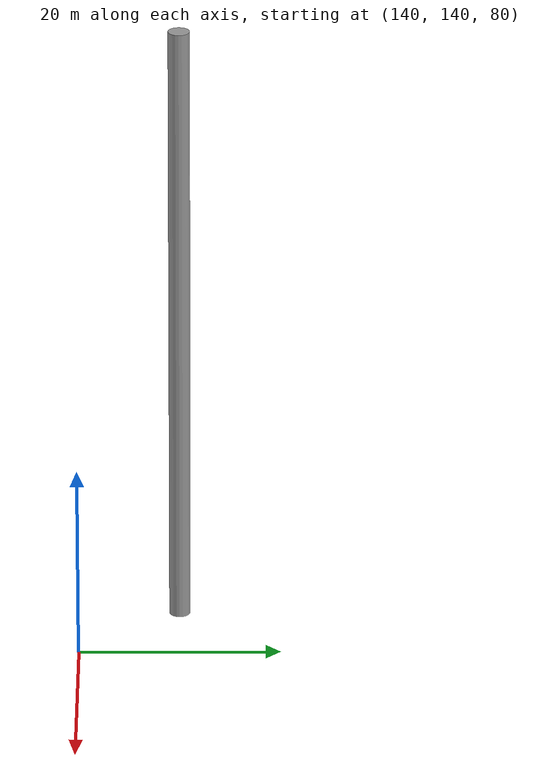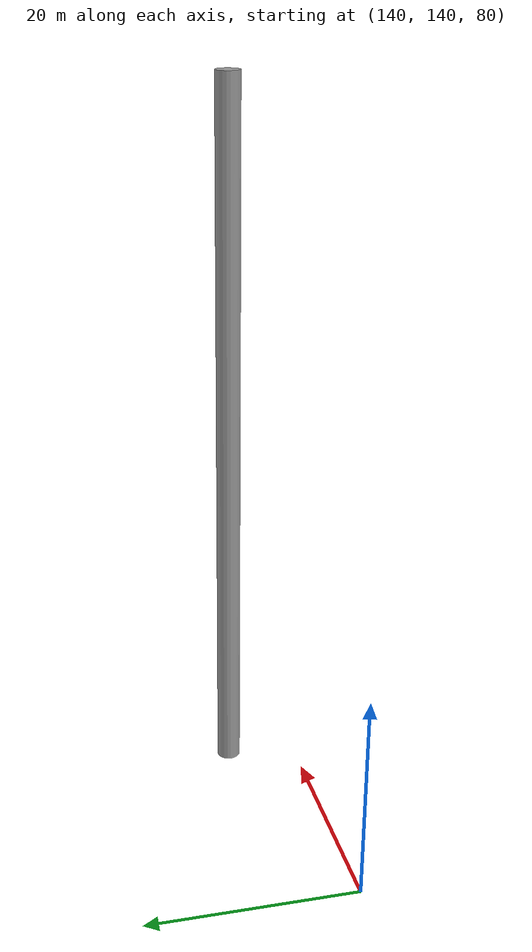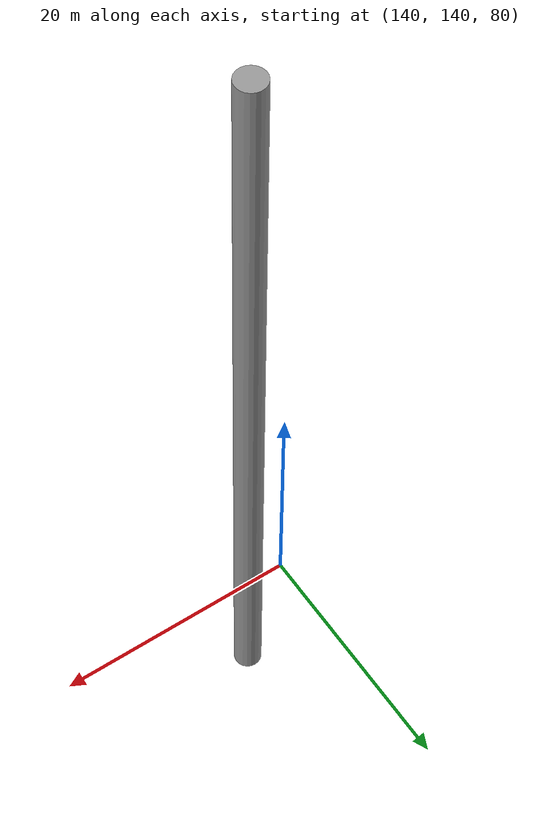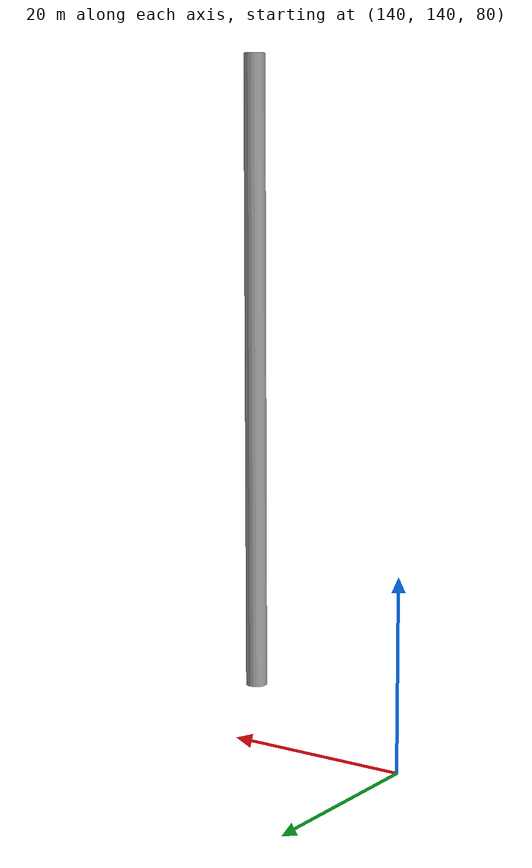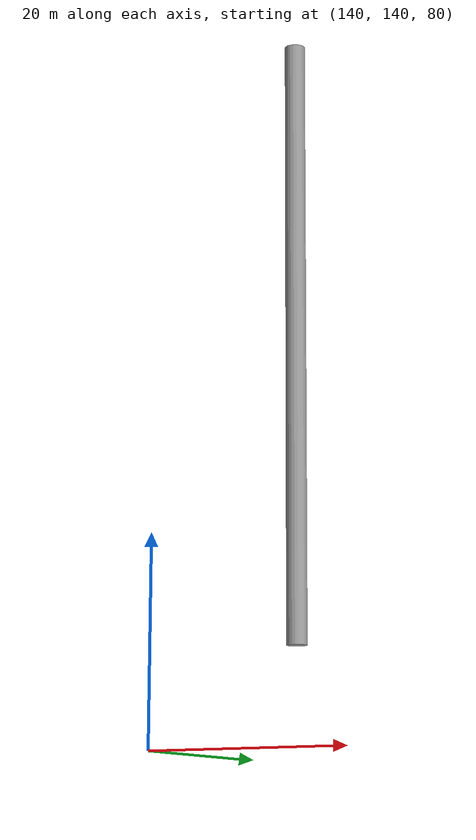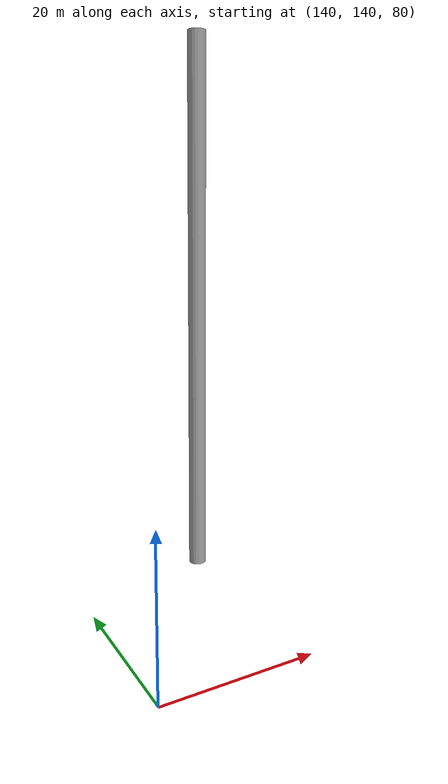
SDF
<?xml version='1.0'?>
<sdf version='1.7'><model name='stick_left'>
  <pose>150 150 150 0 0 0</pose>
  <link name="link">
      <gravity>0</gravity>
      <collision name="collision">
        <geometry>
          <mesh>
            <uri>model://stick_left/meshes/tinker.obj</uri>
          </mesh>
        </geometry>
      </collision>
      <visual name="visual">
        <geometry>
          <mesh>
            <uri>model://stick_left/meshes/tinker.obj</uri>
          </mesh>
        </geometry>
        <material>
          <script>
            <uri>file://media/materials/scripts/gazebo.material</uri>
            <name>Gazebo/Grey</name>
          </script>
        </material>
      </visual>
    </link>
</model>
</sdf>
